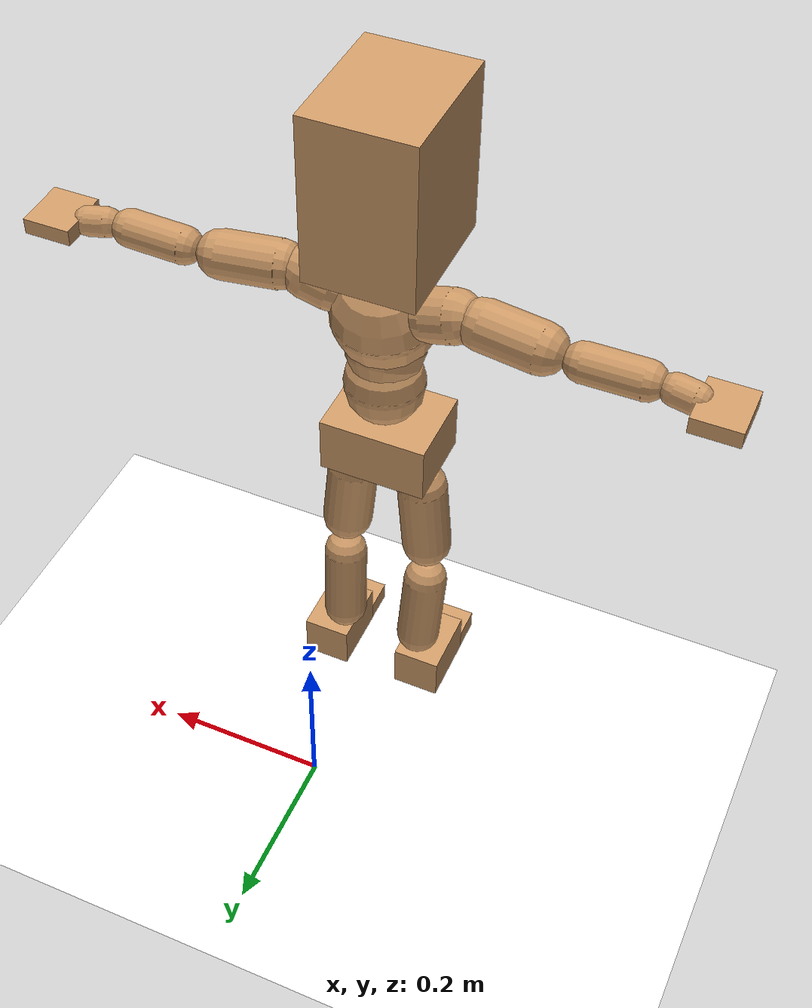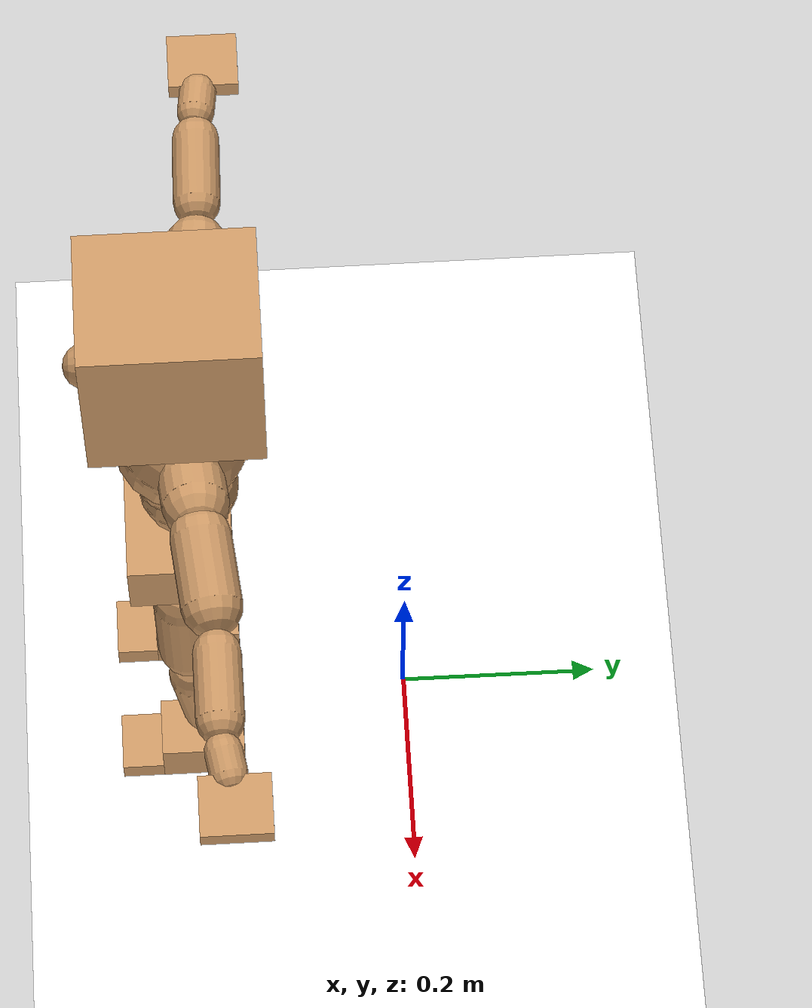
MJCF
<mujoco model="humanoid">
  <option integrator="implicitfast" />

  <visual>
    <global offwidth="1280" offheight="960" />
    <headlight active="1" ambient="0.34 0.34 0.34" diffuse="0.5 0.5 0.5" />
  </visual>

  <default>
    <joint damping="2" stiffness="2" armature="0.01" limited="true" solimplimit="0 .99 .01" />
    <geom condim="1" friction="0.7 0.005 0.0001" solimp=".99 .99 .003" solref="0.015 1" margin="0.001" rgba="0.8 0.6 .4 1" />
    <default class="smplcontact">
      <geom condim="3" friction="1. 0.005 0.0001" solref="0.015 1" solimp="0.98 0.98 0.001" priority="1" />
    </default>
    <default class="stiff_medium">
      <joint stiffness="10" />
    </default>
    <default class="stiff_medium_higher">
      <joint stiffness="50" />
    </default>
    <default class="stiff_high">
      <joint stiffness="100" />
    </default>
  </default>

  <asset>
    <texture type="skybox" builtin="gradient" rgb1="0.99 0.99 0.99" rgb2="0.608 0.828 0.892" width="100" />
    <texture builtin="flat" height="1278" mark="cross" markrgb="1 1 1" name="texgeom" random="0.01" rgb1="0.8 0.6 0.4" rgb2="0.8 0.6 0.4" type="cube" width="127" />
    <texture name="texplane" type="2d" builtin="checker" markrgb="1 1 1" rgb1="0.756 0.772 0.76" rgb2="0.6 0.6 0.6" width="100" height="100" />
    <material name="MatPlane" reflectance="0.5" texture="texplane" texrepeat="1 1" texuniform="true" />
    <material name="geom" texture="texgeom" texuniform="true" />
  </asset>

  <worldbody>
    <light name="tracking_light" pos="0 0 7" dir="0 0 -1" directional="true" cutoff="100" exponent="1" diffuse="1 1 1" specular="0.1 0.1 0.1" mode="trackcom" />
    <camera name="back" pos="0 3 2.4" xyaxes="-1 0 0 0 -1 2" mode="trackcom" />
    <camera name="side" pos="-3 0 2.4" xyaxes="0 -1 0 1 0 2" mode="trackcom" />
    <camera name="front_side" pos="-2.8 -2.8 0.8" xyaxes="0.5 -0.5 0 0.1 0.1 1" mode="trackcom" />
    <geom condim="3" name="floor" pos="0 0 0" rgba="1 1 1 1" size="100 100 .2" type="plane" material="MatPlane" />
    <body name="Pelvis" pos="-0.0018 -0.2233 0.405042" euler="90 0 0">
      <site name="Pelvis" size="0.01" />
      <freejoint name="Pelvis" />
      <geom type="box" pos="0 -0.00597861 -0.003366" size="0.0654228 0.035674 0.050796" quat="1.0000 0.0000 0.0000 0.0000" density="3165.830099" name="Pelvis" />
      <body name="L_Hip" pos="0.042534 -0.0451607 -0.0041616">
        <joint name="L_Hip_x" type="hinge" pos="0 0 0" axis="1 0 0" stiffness="0.48995234693877554" range="-160.0 22.92" class="stiff_medium" damping="0.4977047726865478" armature="0.0002247021616173823"/>
        <joint name="L_Hip_y" type="hinge" pos="0 0 0" axis="0 1 0" stiffness="0.5171365625" range="-70.0 70.0" class="stiff_medium" damping="0.3921488021081134" armature="0.0002973695811632509"/>
        <joint name="L_Hip_z" type="hinge" pos="0 0 0" axis="0 0 1" stiffness="0.5103924489795918" range="-28.65 90.0" class="stiff_medium" damping="0.33856878214165964" armature="0.00022458956920318792"/>
        <geom type="capsule" density="2040.816327" fromto="0.00283467 -0.0307344 -0.00036889 0.0112356 -0.123021 -0.00147535" size="0.0312174" name="L_Hip" />
        <body name="L_Knee" pos="0.0140702 -0.153756 -0.00184424">
          <joint name="L_Knee_x" type="hinge" pos="0 0 0" axis="1 0 0" range="-5.16 171.89" damping="0.2960587681026821" armature="0.00026061426619812696" stiffness="0.10510120408163266"/>
          <joint name="L_Knee_y" type="hinge" pos="0 0 0" axis="0 1 0" range="-4.58 6.88" damping="0.3273177664941245" armature="0.00035769287368093153" stiffness="0.0936006558854719"/>
          <joint name="L_Knee_z" type="hinge" pos="0 0 0" axis="0 0 1" range="-6.88 4.58" damping="0.3050535283425393" armature="0.000259683439414108" stiffness="0.1119844888888889"/>
          <geom type="capsule" density="1234.567901" fromto="-0.00110323 -0.0326209 -0.00355883 -0.00446359 -0.130481 -0.0143366" size="0.0274612" name="L_Knee" />
          <body name="L_Ankle" pos="-0.00556682 -0.163102 -0.0178954">
            <joint name="L_Ankle_x" type="hinge" pos="0 0 0" axis="1 0 0" range="-45.84 45.84" class="stiff_medium" damping="0.40776364333247084" armature="0.0005000444231591069" stiffness="0.9236467641843972"/>
            <joint name="L_Ankle_y" type="hinge" pos="0 0 0" axis="0 1 0" range="-74.48 22.92" class="stiff_medium" damping="0.21238666720539898" armature="0.0004968127957888357" stiffness="1.0088328550170067"/>
            <joint name="L_Ankle_z" type="hinge" pos="0 0 0" axis="0 0 1" range="-4.58 4.58" class="stiff_medium" damping="0.5341341980566087" armature="0.0006966466319262585" stiffness="1.1375898979591836"/>
            <geom type="box" pos="0.0142596 -0.0146268 0.0120177" size="0.0295596 0.0283968 0.042211" quat="1.0000 0.0000 0.0000 0.0000" density="449.071558" name="L_Ankle" class="smplcontact" />
            <body name="L_Toe" pos="0.0161568 -0.0341496 0.0592444">
              <joint name="L_Toe_x" type="hinge" pos="0 0 0" axis="1 0 0" range="-91.67 22.92" armature="0.0004847995347912504" damping="0.13412514043759988" stiffness="0.185536"/>
              <joint name="L_Toe_y" type="hinge" pos="0 0 0" axis="0 1 0" range="-4.58 4.58" armature="0.0005444255858703062" damping="0.1437140729095886" stiffness="0.1896837261904762"/>
              <joint name="L_Toe_z" type="hinge" pos="0 0 0" axis="0 0 1" range="-4.58 4.58" armature="0.000696647260818292" damping="0.1781011559156279" stiffness="0.227662"/>
              <geom type="box" pos="-0.001836 0.003366 0.0123157" size="0.0292536 0.01224 0.0246314" quat="1.0000 0.0000 0.0000 0.0000" density="423.206892" name="L_Toe" class="smplcontact" />
            </body>
          </body>
        </body>
      </body>
      <body name="R_Hip" pos="-0.0414324 -0.0447161 -0.0026316">
        <joint name="R_Hip_x" type="hinge" pos="0 0 0" axis="1 0 0" stiffness="0.48995234693877554" range="-160.0 22.92" class="stiff_medium" damping="0.4977047726865478" armature="0.0002247021616173823"/>
        <joint name="R_Hip_y" type="hinge" pos="0 0 0" axis="0 1 0" stiffness="0.5171365625" range="-70.0 70.0" class="stiff_medium" damping="0.3921488021081134" armature="0.0002973695811632509"/>
        <joint name="R_Hip_z" type="hinge" pos="0 0 0" axis="0 0 1" stiffness="0.5103924489795918" range="-90.0 28.65" class="stiff_medium" damping="0.33856878214165964" armature="0.00022458956920318792"/>
        <geom type="capsule" density="2040.816327" fromto="-0.00316223 -0.0313489 -0.000740958 -0.0125467 -0.125439 -0.0029129" size="0.0307606" name="R_Hip" />
        <body name="R_Knee" pos="-0.0157089 -0.156788 -0.00365386">
          <joint name="R_Knee_x" type="hinge" pos="0 0 0" axis="1 0 0" range="-5.16 171.89" damping="0.2960587681026821" armature="0.00026061426619812696" stiffness="0.10510120408163266"/>
          <joint name="R_Knee_y" type="hinge" pos="0 0 0" axis="0 1 0" range="-6.88 4.58" damping="0.3273177664941245" armature="0.00035769287368093153" stiffness="0.0936006558854719"/>
          <joint name="R_Knee_z" type="hinge" pos="0 0 0" axis="0 0 1" range="-4.58 6.88" damping="0.3050535283425393" armature="0.000259683439414108" stiffness="0.1119844888888889"/>
          <geom type="capsule" density="1234.567901" fromto="0.00131772 -0.0326602 -0.00348938 0.00516984 -0.130602 -0.0138573" size="0.0274612" name="R_Knee" />
          <body name="R_Ankle" pos="0.00648755 -0.163263 -0.0173467">
            <joint name="R_Ankle_x" type="hinge" pos="0 0 0" axis="1 0 0" range="-45.84 45.84" class="stiff_medium" damping="0.40776364333247084" armature="0.0005000444231591069" stiffness="0.9236467641843972"/>
            <joint name="R_Ankle_y" type="hinge" pos="0 0 0" axis="0 1 0" range="-22.92 74.48" class="stiff_medium" damping="0.21238666720539898" armature="0.0004968127957888357" stiffness="1.0088328550170067"/>
            <joint name="R_Ankle_z" type="hinge" pos="0 0 0" axis="0 0 1" range="-4.58 4.58" class="stiff_medium" damping="0.5341341980566087" armature="0.0006966466319262585" stiffness="1.1375898979591836"/>
            <geom type="box" pos="-0.0129744 -0.0106488 0.012713" size="0.0295596 0.0292536 0.0429559" quat="1.0000 0.0000 0.0000 0.0000" density="434.700981" name="R_Ankle" class="smplcontact" />
            <body name="R_Toe" pos="-0.0155448 -0.0294372 0.0612308">
              <joint name="R_Toe_x" type="hinge" pos="0 0 0" axis="1 0 0" range="-91.67 22.92" armature="0.0004847995347912504" damping="0.13412514043759988" stiffness="0.185536"/>
              <joint name="R_Toe_y" type="hinge" pos="0 0 0" axis="0 1 0" range="-4.58 4.58" armature="0.0005444255858703062" damping="0.1437140729095886" stiffness="0.1896837261904762"/>
              <joint name="R_Toe_z" type="hinge" pos="0 0 0" axis="0 0 1" range="-4.58 4.58" armature="0.000696647260818292" damping="0.1781011559156279" stiffness="0.227662"/>
              <geom type="box" pos="0.0025704 0.002754 0.0112728" size="0.0293148 0.0132192 0.0244824" quat="1.0000 0.0000 0.0000 0.0000" density="407.384095" name="R_Toe" class="smplcontact" />
            </body>
          </body>
        </body>
      </body>
      <body name="Torso" pos="-0.00153 0.0538569 -0.0163404">
        <joint name="Torso_x" type="hinge" pos="0 0 0" axis="1 0 0" range="-25.78 57.3" class="stiff_medium" damping="2.9084601436144015" armature="0.0015892240295548327" stiffness="2.3656941304347825"/>
        <joint name="Torso_y" type="hinge" pos="0 0 0" axis="0 1 0" range="-57.3 57.3" class="stiff_high" damping="2.1263994733272606" armature="0.0004643109293701226" stiffness="24.34561860465116"/>
        <joint name="Torso_z" type="hinge" pos="0 0 0" axis="0 0 1" range="-34.38 34.38" class="stiff_high" damping="3.2512143793534687" armature="0.0011853281347181397" stiffness="22.294237837837844"/>
        <geom type="capsule" density="2040.816327" fromto="0.00128214 0.0304597 0.000256427 0.00153264 0.0372232 0.000306527" size="0.0477241" name="Torso" />
        <body name="Spine" pos="0.00281433 0.0677329 0.000562866">
          <joint name="Spine_x" type="hinge" pos="0 0 0" axis="1 0 0" stiffness="2.5584518750000003" range="-25.78 57.3" class="stiff_medium" damping="3.505454864283201" armature="0.002134661359620802"/>
          <joint name="Spine_y" type="hinge" pos="0 0 0" axis="0 1 0" stiffness="3.0424686206896547" range="-57.3 57.3" class="stiff_high" damping="0.9480206252448731" armature="0.00046156140885170643"/>
          <joint name="Spine_z" type="hinge" pos="0 0 0" axis="0 0 1" stiffness="5.511264102564102" range="-34.38 34.38" class="stiff_high" damping="2.170870632419105" armature="0.0011876382257513406"/>
          <geom type="capsule" density="2040.816327" fromto="0.00038095 0.0119364 0.00568462 0.00043105 0.0145917 0.00698722" size="0.0468553" name="Spine" />
          <body name="Chest" pos="0.000812 0.026528 0.0126718">
            <joint name="Chest_x" type="hinge" pos="0 0 0" axis="1 0 0" stiffness="3.028622222222222" range="-25.78 57.3" class="stiff_medium" damping="4.092467015800738" armature="0.002457778568240344"/>
            <joint name="Chest_y" type="hinge" pos="0 0 0" axis="0 1 0" stiffness="3.0405263157894735" range="-57.3 57.3" class="stiff_high" damping="0.9456197703732916" armature="0.000459519924168467"/>
            <joint name="Chest_z" type="hinge" pos="0 0 0" axis="0 0 1" stiffness="6.460490526315789" range="-34.38 34.38" class="stiff_high" damping="2.3119444408530216" armature="0.001149097278255941"/>
            <geom type="capsule" density="2040.816327" fromto="-0.00050458 0.034177 -0.00863194 -0.00055468 0.0417421 -0.0105858" size="0.0621841" name="Chest" />
            <body name="Neck" pos="-0.00157062 0.10752 -0.0201084">
              <joint name="Neck_x" type="hinge" pos="0 0 0" axis="1 0 0" range="-28.65 57.3" class="stiff_medium_higher" damping="5.404989203095745" armature="0.005405442888714338" stiffness="27.02267777777778"/>
              <joint name="Neck_y" type="hinge" pos="0 0 0" axis="0 1 0" range="-40.11 40.11" class="stiff_medium_higher" damping="6.297114262226772" armature="0.007507919137942941" stiffness="26.40788166666666"/>
              <joint name="Neck_z" type="hinge" pos="0 0 0" axis="0 0 1" range="-40.11 40.11" class="stiff_medium_higher" damping="6.363901976368176" armature="0.005521056653527617" stiffness="36.677080952380955"/>
              <geom type="capsule" density="1000" fromto="0.000492513 0.00645408 0.00511757 0.00203197 0.0258215 0.0204129" size="0.0268184" name="Neck" />
              <body name="Head" pos="0.00258641 0.0322807 0.025473">
                <joint name="Head_x" type="hinge" pos="0 0 0" axis="1 0 0" range="-28.65 57.3" class="stiff_medium_higher" damping="1.66355057917507" armature="0.007932048424047764" stiffness="43.61106333333333"/>
                <joint name="Head_y" type="hinge" pos="0 0 0" axis="0 1 0" range="-40.11 40.11" class="stiff_medium_higher" damping="2.0692690885759495" armature="0.011292038670453653" stiffness="47.39926382978724"/>
                <joint name="Head_z" type="hinge" pos="0 0 0" axis="0 0 1" range="-40.11 40.11" class="stiff_medium_higher" damping="1.6444739375671138" armature="0.007726206284965644" stiffness="43.75197916666667"/>
                <geom type="box" pos="-0.00449148 0.0756338 -0.012405" size="0.0648056 0.0996364 0.0812744" quat="1.0000 0.0000 0.0000 0.0000" density="1018.069894" name="Head" />
                <geom type="capsule" name="nose" size="0.021388 0.010694" pos="0 0.060438 0.05347" quat="1 0 0 0" mass="0" contype="0" conaffinity="0" />
              </body>
            </body>
            <body name="L_Thorax" pos="0.0489998 0.0609536 -0.0173985">
              <joint name="L_Thorax_x" type="hinge" pos="0 0 0" axis="1 0 0" range="-10.89 4.58" class="stiff_medium_higher" damping="1.0759147759719383" armature="0.00042847793960415563" stiffness="3.3770484375"/>
              <joint name="L_Thorax_y" type="hinge" pos="0 0 0" axis="0 1 0" range="-28.65 17.19" class="stiff_medium_higher" damping="0.950541276903369" armature="0.00031755704164836265" stiffness="3.5565607142857143"/>
              <joint name="L_Thorax_z" type="hinge" pos="0 0 0" axis="0 0 1" range="-31.51 40.11" class="stiff_medium_higher" damping="0.9474628677750806" armature="0.00031771354867687933" stiffness="3.531820918367347"/>
              <geom type="capsule" density="1000" fromto="0.00886852 0.00297242 -0.000880984 0.0354751 0.01189 -0.00346367" size="0.0314476" name="L_Thorax" />
              <body name="L_Shoulder" pos="0.0443436 0.0148624 -0.00434466">
                <joint name="L_Shoulder_x" type="hinge" pos="0 0 0" axis="1 0 0" range="-97.4 97.4" class="stiff_medium" damping="0.31160092213034485" armature="0.00040070053288131474" stiffness="0.6730929591836734"/>
                <joint name="L_Shoulder_y" type="hinge" pos="0 0 0" axis="0 1 0" range="-108.86 80.21" class="stiff_medium" damping="0.27134865537234404" armature="0.0003077174821460575" stiffness="0.6646617346938776"/>
                <joint name="L_Shoulder_z" type="hinge" pos="0 0 0" axis="0 0 1" range="-97.4 85.94" class="stiff_medium" damping="0.2713565853419703" armature="0.00030752509070149564" stiffness="0.6651164285714285"/>
                <geom type="capsule" density="1000" fromto="0.0231107 -0.00116502 -0.00244948 0.0924884 -0.0045493 -0.00979693" size="0.0285177" name="L_Shoulder" />
                <body name="L_Elbow" pos="0.115599 -0.00571432 -0.0122464">
                  <joint name="L_Elbow_x" type="hinge" pos="0 0 0" axis="1 0 0" range="-17.19 4.58" damping="0.28313627322323576" armature="0.00046438098813922205" stiffness="0.13810410204081633"/>
                  <joint name="L_Elbow_y" type="hinge" pos="0 0 0" axis="0 1 0" range="-180.0 17.19" damping="0.2369346839007025" armature="0.00032516475611910956" stiffness="0.1381159387755102"/>
                  <joint name="L_Elbow_z" type="hinge" pos="0 0 0" axis="0 0 1" range="-100.84 4.58" damping="0.23690814451099315" armature="0.00032427806796637466" stiffness="0.13846257142857143"/>
                  <geom type="capsule" density="1000" fromto="0.0221759 0.000801796 -8.55499e-05 0.0887928 0.00320642 -0.00039726" size="0.0223398" name="L_Elbow" />
                  <body name="L_Wrist" pos="0.110969 0.00400821 -0.000537969">
                    <joint name="L_Wrist_x" type="hinge" pos="0 0 0" axis="1 0 0" range="-180.0 22.92" armature="0.0005468522613627445" damping="0.13289487155970034" stiffness="0.16147914285714288"/>
                    <joint name="L_Wrist_y" type="hinge" pos="0 0 0" axis="0 1 0" range="-17.19 17.19" armature="0.0003976883443506446" damping="0.1117601636600009" stiffness="0.15703671428571428"/>
                    <joint name="L_Wrist_z" type="hinge" pos="0 0 0" axis="0 0 1" range="-22.92 22.92" armature="0.0003857789424559731" damping="0.1105031987837259" stiffness="0.15826365306122447"/>
                    <geom type="capsule" density="1000" fromto="0.00748137 -0.000708969 -0.00133596 0.0299245 -0.00289094 -0.00534366" size="0.0175409" name="L_Wrist" class="smplcontact" />
                    <body name="L_Hand" pos="0.0374067 -0.00365515 -0.00662461">
                      <joint name="L_Hand_x" type="hinge" pos="0 0 0" axis="1 0 0" range="-17.19 17.19" armature="0.0006931388541826061" damping="0.163825834799273" stiffness="0.19360409523809524"/>
                      <joint name="L_Hand_y" type="hinge" pos="0 0 0" axis="0 1 0" range="-51.57 51.57" armature="0.0005080133040382627" damping="0.13712042114854622" stiffness="0.185054306122449"/>
                      <joint name="L_Hand_z" type="hinge" pos="0 0 0" axis="0 0 1" range="-91.67 91.67" armature="0.00045788384153414355" damping="0.1294660010052445" stiffness="0.18303163265306124"/>
                      <geom type="box" pos="0.0243591 0.000612 -0.0035496" size="0.0289048 0.0096696 0.0329256" quat="1.0000 0.0000 0.0000 0.0000" density="400.552564" name="L_Hand" class="smplcontact" />
                    </body>
                  </body>
                </body>
              </body>
            </body>
            <body name="R_Thorax" pos="-0.0506691 0.0592294 -0.0202107">
              <joint name="R_Thorax_x" type="hinge" pos="0 0 0" axis="1 0 0" range="-10.89 4.58" class="stiff_medium_higher" damping="1.0759147759719383" armature="0.00042847793960415563" stiffness="3.3770484375"/>
              <joint name="R_Thorax_y" type="hinge" pos="0 0 0" axis="0 1 0" range="-17.19 28.65" class="stiff_medium_higher" damping="0.950541276903369" armature="0.00031755704164836265" stiffness="3.5565607142857143"/>
              <joint name="R_Thorax_z" type="hinge" pos="0 0 0" axis="0 0 1" range="-40.11 31.51" class="stiff_medium_higher" damping="0.9474628677750806" armature="0.00031771354867687933" stiffness="3.531820918367347"/>
              <geom type="capsule" density="1000" fromto="-0.00935649 0.00316756 -0.000873295 -0.037425 0.0126699 -0.00355344" size="0.030844" name="R_Thorax" />
              <body name="R_Shoulder" pos="-0.046778 0.0158966 -0.00442641">
                <joint name="R_Shoulder_x" type="hinge" pos="0 0 0" axis="1 0 0" range="-97.4 97.4" class="stiff_medium" damping="0.31160092213034485" armature="0.00040070053288131474" stiffness="0.6730929591836734"/>
                <joint name="R_Shoulder_y" type="hinge" pos="0 0 0" axis="0 1 0" range="-80.21 108.86" class="stiff_medium" damping="0.27134865537234404" armature="0.0003077174821460575" stiffness="0.6646617346938776"/>
                <joint name="R_Shoulder_z" type="hinge" pos="0 0 0" axis="0 0 1" range="-85.94 97.4" class="stiff_medium" damping="0.2713565853419703" armature="0.00030752509070149564" stiffness="0.6651164285714285"/>
                <geom type="capsule" density="1000" fromto="-0.0225762 -0.0012062 -0.00191888 -0.0903954 -0.0047686 -0.00761872" size="0.02929" name="R_Shoulder" />
                <body name="R_Elbow" pos="-0.112972 -0.00591966 -0.00953765">
                  <joint name="R_Elbow_x" type="hinge" pos="0 0 0" axis="1 0 0" range="-17.19 4.58" damping="0.28313627322323576" armature="0.00046438098813922205" stiffness="0.13810410204081633"/>
                  <joint name="R_Elbow_y" type="hinge" pos="0 0 0" axis="0 1 0" range="-17.19 180.0" damping="0.2369346839007025" armature="0.00032516475611910956" stiffness="0.1381159387755102"/>
                  <joint name="R_Elbow_z" type="hinge" pos="0 0 0" axis="0 0 1" range="-4.58 100.84" damping="0.23690814451099315" armature="0.00032427806796637466" stiffness="0.13846257142857143"/>
                  <geom type="capsule" density="1000" fromto="-0.0227546 0.000719348 -0.000489673 -0.0909301 0.00276773 -0.00195916" size="0.0225053" name="R_Elbow" />
                  <body name="R_Wrist" pos="-0.113684 0.00348707 -0.00250399">
                    <joint name="R_Wrist_x" type="hinge" pos="0 0 0" axis="1 0 0" range="-180.0 22.92" armature="0.0005468522613627445" damping="0.13289487155970034" stiffness="0.16147914285714288"/>
                    <joint name="R_Wrist_y" type="hinge" pos="0 0 0" axis="0 1 0" range="-17.19 17.19" armature="0.0003976883443506446" damping="0.1117601636600009" stiffness="0.15703671428571428"/>
                    <joint name="R_Wrist_z" type="hinge" pos="0 0 0" axis="0 0 1" range="-22.92 22.92" armature="0.0003857789424559731" damping="0.1105031987837259" stiffness="0.15826365306122447"/>
                    <geom type="capsule" density="1000" fromto="-0.00752533 -0.000531057 -0.000939076 -0.0301466 -0.00217867 -0.00369994" size="0.0179822" name="R_Wrist" class="smplcontact" />
                    <body name="R_Hand" pos="-0.0376732 -0.00270982 -0.00458401">
                      <joint name="R_Hand_x" type="hinge" pos="0 0 0" axis="1 0 0" range="-17.19 17.19" armature="0.0006931388541826061" damping="0.163825834799273" stiffness="0.19360409523809524"/>
                      <joint name="R_Hand_y" type="hinge" pos="0 0 0" axis="0 1 0" range="-51.57 51.57" armature="0.0005080133040382627" damping="0.13712042114854622" stiffness="0.185054306122449"/>
                      <joint name="R_Hand_z" type="hinge" pos="0 0 0" axis="0 0 1" range="-91.67 91.67" armature="0.00045788384153414355" damping="0.1294660010052445" stiffness="0.18303163265306124"/>
                      <geom type="box" pos="-0.0228274 -0.0005508 -0.0048348" size="0.0281143 0.0100368 0.0334152" quat="1.0000 0.0000 0.0000 0.0000" density="403.679611" name="R_Hand" class="smplcontact" />
                    </body>
                  </body>
                </body>
              </body>
            </body>
          </body>
        </body>
      </body>
    </body>
  </worldbody>
  <actuator>
    <general name="L_Hip_x" joint="L_Hip_x" biastype="affine" gainprm="14.077803925055195" biasprm="-10.54988717497576 -8.819142244897959 -0.06636063635820637" ctrllimited="true" ctrlrange="-1 1" forcerange="-17.638284489795918 17.638284489795918" />
    <general name="L_Hip_y" joint="L_Hip_y" biastype="affine" gainprm="11.37242697956875" biasprm="0.0 -9.308458125 -0.07842976042162268" ctrllimited="true" ctrlrange="-1 1" forcerange="-18.61691625 18.61691625" />
    <general name="L_Hip_z" joint="L_Hip_z" biastype="affine" gainprm="9.512438460121" biasprm="4.918568053336901 -9.187064081632654 -0.06771375642833193" ctrllimited="true" ctrlrange="-1 1" forcerange="-18.374128163265308 18.374128163265308" />
    <general name="L_Knee_x" joint="L_Knee_x" biastype="affine" gainprm="14.61482111484655" biasprm="13.762943374630698 -9.45910836734694 -0.07401469202567053" ctrllimited="true" ctrlrange="-1 1" forcerange="-18.91821673469388 18.91821673469388" />
    <general name="L_Knee_y" joint="L_Knee_y" biastype="affine" gainprm="0.8424679557613213" biasprm="0.16908170141806622 -8.42405902969247 -0.08182944162353112" ctrllimited="true" ctrlrange="-1 1" forcerange="-16.84811805938494 16.84811805938494" />
    <general name="L_Knee_z" joint="L_Knee_z" biastype="affine" gainprm="1.0079346404007625" biasprm="-0.2022905473753712 -10.078604 -0.07626338208563482" ctrllimited="true" ctrlrange="-1 1" forcerange="-20.157208 20.157208" />
    <general name="L_Ankle_x" joint="L_Ankle_x" biastype="affine" gainprm="6.65074656929849" biasprm="0.0 -8.312820877659576 -0.13592121444415695" ctrllimited="true" ctrlrange="-1 1" forcerange="-16.62564175531915 16.62564175531915" />
    <general name="L_Ankle_y" joint="L_Ankle_y" biastype="affine" gainprm="7.7173474924622205" biasprm="-4.085281691081644 -9.07949569515306 -0.14159111147026598" ctrllimited="true" ctrlrange="-1 1" forcerange="-18.15899139030612 18.15899139030612" />
    <general name="L_Ankle_z" joint="L_Ankle_z" biastype="affine" gainprm="0.8184102911658762" biasprm="0.0 -10.238309081632654 -0.17804473268553622" ctrllimited="true" ctrlrange="-1 1" forcerange="-20.476618163265307 20.476618163265307" />
    <general name="L_Toe_x" joint="L_Toe_x" biastype="affine" gainprm="6.679205127711378" biasprm="-4.007289925212996 -6.679296 -0.053650056175039956" ctrllimited="true" ctrlrange="-1 1" forcerange="-13.358592 13.358592" />
    <general name="L_Toe_y" joint="L_Toe_y" biastype="affine" gainprm="0.5458526446462726" biasprm="0.0 -6.828614142857143 -0.05748562916383544" ctrllimited="true" ctrlrange="-1 1" forcerange="-13.657228285714286 13.657228285714286" />
    <general name="L_Toe_z" joint="L_Toe_z" biastype="affine" gainprm="0.6551426802986285" biasprm="0.0 -8.195832 -0.07124046236625116" ctrllimited="true" ctrlrange="-1 1" forcerange="-16.391664 16.391664" />
    <general name="R_Hip_x" joint="R_Hip_x" biastype="affine" gainprm="14.077803925055195" biasprm="-10.54988717497576 -8.819142244897959 -0.06636063635820637" ctrllimited="true" ctrlrange="-1 1" forcerange="-17.638284489795918 17.638284489795918" />
    <general name="R_Hip_y" joint="R_Hip_y" biastype="affine" gainprm="11.37242697956875" biasprm="0.0 -9.308458125 -0.07842976042162268" ctrllimited="true" ctrlrange="-1 1" forcerange="-18.61691625 18.61691625" />
    <general name="R_Hip_z" joint="R_Hip_z" biastype="affine" gainprm="9.512438460121" biasprm="-4.918568053336901 -9.187064081632654 -0.06771375642833193" ctrllimited="true" ctrlrange="-1 1" forcerange="-18.374128163265308 18.374128163265308" />
    <general name="R_Knee_x" joint="R_Knee_x" biastype="affine" gainprm="14.61482111484655" biasprm="13.762943374630698 -9.45910836734694 -0.07401469202567053" ctrllimited="true" ctrlrange="-1 1" forcerange="-18.91821673469388 18.91821673469388" />
    <general name="R_Knee_y" joint="R_Knee_y" biastype="affine" gainprm="0.8424679557613213" biasprm="-0.16908170141806622 -8.42405902969247 -0.08182944162353112" ctrllimited="true" ctrlrange="-1 1" forcerange="-16.84811805938494 16.84811805938494" />
    <general name="R_Knee_z" joint="R_Knee_z" biastype="affine" gainprm="1.0079346404007625" biasprm="0.2022905473753712 -10.078604 -0.07626338208563482" ctrllimited="true" ctrlrange="-1 1" forcerange="-20.157208 20.157208" />
    <general name="R_Ankle_x" joint="R_Ankle_x" biastype="affine" gainprm="6.65074656929849" biasprm="0.0 -8.312820877659576 -0.13592121444415695" ctrllimited="true" ctrlrange="-1 1" forcerange="-16.62564175531915 16.62564175531915" />
    <general name="R_Ankle_y" joint="R_Ankle_y" biastype="affine" gainprm="7.7173474924622205" biasprm="4.085281691081644 -9.07949569515306 -0.14159111147026598" ctrllimited="true" ctrlrange="-1 1" forcerange="-18.15899139030612 18.15899139030612" />
    <general name="R_Ankle_z" joint="R_Ankle_z" biastype="affine" gainprm="0.8184102911658762" biasprm="0.0 -10.238309081632654 -0.17804473268553622" ctrllimited="true" ctrlrange="-1 1" forcerange="-20.476618163265307 20.476618163265307" />
    <general name="R_Toe_x" joint="R_Toe_x" biastype="affine" gainprm="6.679205127711378" biasprm="-4.007289925212996 -6.679296 -0.053650056175039956" ctrllimited="true" ctrlrange="-1 1" forcerange="-13.358592 13.358592" />
    <general name="R_Toe_y" joint="R_Toe_y" biastype="affine" gainprm="0.5458526446462726" biasprm="0.0 -6.828614142857143 -0.05748562916383544" ctrllimited="true" ctrlrange="-1 1" forcerange="-13.657228285714286 13.657228285714286" />
    <general name="R_Toe_z" joint="R_Toe_z" biastype="affine" gainprm="0.6551426802986285" biasprm="0.0 -8.195832 -0.07124046236625116" ctrllimited="true" ctrlrange="-1 1" forcerange="-16.391664 16.391664" />
    <general name="Torso_x" joint="Torso_x" biastype="affine" gainprm="41.16363265011073" biasprm="15.617208728111336 -56.77665913043478 -0.7755893716305071" ctrllimited="true" ctrlrange="-1 1" forcerange="-85.16498869565217 85.16498869565217" />
    <general name="Torso_y" joint="Torso_y" biastype="affine" gainprm="58.4337886483799" biasprm="0.0 -58.42948465116279 -0.42527989466545213" ctrllimited="true" ctrlrange="-1 1" forcerange="-87.64422697674418 87.64422697674418" />
    <general name="Torso_z" joint="Torso_z" biastype="affine" gainprm="32.10606728992411" biasprm="0.0 -53.50617081081082 -0.6502428758706937" ctrllimited="true" ctrlrange="-1 1" forcerange="-80.25925621621624 80.25925621621624" />
    <general name="Spine_x" joint="Spine_x" biastype="affine" gainprm="44.51766260929578" biasprm="16.889705409785783 -61.402845000000006 -0.9347879638088535" ctrllimited="true" ctrlrange="-1 1" forcerange="-92.1042675 92.1042675" />
    <general name="Spine_y" joint="Spine_y" biastype="affine" gainprm="73.02462559597572" biasprm="0.0 -73.0192468965517 -0.47401031262243654" ctrllimited="true" ctrlrange="-1 1" forcerange="-109.52887034482757 109.52887034482757" />
    <general name="Spine_z" joint="Spine_z" biastype="affine" gainprm="39.68402450366675" biasprm="0.0 -66.13516923076922 -0.7236235441397016" ctrllimited="true" ctrlrange="-1 1" forcerange="-99.20275384615383 99.20275384615383" />
    <general name="Chest_x" joint="Chest_x" biastype="affine" gainprm="52.69873691093154" biasprm="19.993550643145905 -72.68693333333333 -1.0913245375468634" ctrllimited="true" ctrlrange="-1 1" forcerange="-109.03039999999999 109.03039999999999" />
    <general name="Chest_y" joint="Chest_y" biastype="affine" gainprm="72.97800684462216" biasprm="0.0 -72.97263157894736 -0.4728098851866458" ctrllimited="true" ctrlrange="-1 1" forcerange="-109.45894736842105 109.45894736842105" />
    <general name="Chest_z" joint="Chest_z" biastype="affine" gainprm="46.51895818832985" biasprm="0.0 -77.52588631578948 -0.7706481469510073" ctrllimited="true" ctrlrange="-1 1" forcerange="-116.28882947368422 116.28882947368422" />
    <general name="Neck_x" joint="Neck_x" biastype="affine" gainprm="14.593320885163724" biasprm="4.864440295054575 -19.456328000000003 -0.4323991362476596" ctrllimited="true" ctrlrange="-1 1" forcerange="-38.912656000000005 38.912656000000005" />
    <general name="Neck_y" joint="Neck_y" biastype="affine" gainprm="13.310552761636952" biasprm="0.0 -19.013674799999997 -0.5037691409781418" ctrllimited="true" ctrlrange="-1 1" forcerange="-38.027349599999994 38.027349599999994" />
    <general name="Neck_z" joint="Neck_z" biastype="affine" gainprm="18.486610449171952" biasprm="0.0 -26.407498285714286 -0.5091121581094541" ctrllimited="true" ctrlrange="-1 1" forcerange="-52.81499657142857 52.81499657142857" />
    <general name="Head_x" joint="Head_x" biastype="affine" gainprm="15.70113928259921" biasprm="5.233713094199737 -20.933310399999996 -0.6654202316700281" ctrllimited="true" ctrlrange="-1 1" forcerange="-41.86662079999999 41.86662079999999" />
    <general name="Head_y" joint="Head_y" biastype="affine" gainprm="15.927325789393636" biasprm="0.0 -22.751646638297874 -0.8277076354303798" ctrllimited="true" ctrlrange="-1 1" forcerange="-45.50329327659575 45.50329327659575" />
    <general name="Head_z" joint="Head_z" biastype="affine" gainprm="14.701747871458265" biasprm="0.0 -21.000950000000003 -0.6577895750268455" ctrllimited="true" ctrlrange="-1 1" forcerange="-42.001900000000006 42.001900000000006" />
    <general name="L_Thorax_x" joint="L_Thorax_x" biastype="affine" gainprm="1.0941735626344984" biasprm="-0.44629833097761396 -8.10491625 -0.08607318207775508" ctrllimited="true" ctrlrange="-1 1" forcerange="-16.2098325 16.2098325" />
    <general name="L_Thorax_y" joint="L_Thorax_y" biastype="affine" gainprm="3.414549787681278" biasprm="-0.8536374469203195 -8.535745714285714 -0.07604330215226952" ctrllimited="true" ctrlrange="-1 1" forcerange="-17.071491428571427 17.071491428571427" />
    <general name="L_Thorax_z" joint="L_Thorax_z" biastype="affine" gainprm="5.297751764401013" biasprm="0.6361444453204231 -8.476370204081633 -0.07579702942200645" ctrllimited="true" ctrlrange="-1 1" forcerange="-16.952740408163265 16.952740408163265" />
    <general name="L_Shoulder_x" joint="L_Shoulder_x" biastype="affine" gainprm="5.492279238572874" biasprm="0.0 -3.2308462040816326 -0.08309357923475863" ctrllimited="true" ctrlrange="-1 1" forcerange="-6.461692408163265 6.461692408163265" />
    <general name="L_Shoulder_y" joint="L_Shoulder_y" biastype="affine" gainprm="5.263951875542713" biasprm="-0.7976528335235559 -3.190376326530612 -0.07235964143262508" ctrllimited="true" ctrlrange="-1 1" forcerange="-6.380752653061224 6.380752653061224" />
    <general name="L_Shoulder_z" joint="L_Shoulder_z" biastype="affine" gainprm="5.107913234123332" biasprm="-0.319279402547472 -3.192558857142857 -0.0723617560911921" ctrllimited="true" ctrlrange="-1 1" forcerange="-6.385117714285714 6.385117714285714" />
    <general name="L_Elbow_x" joint="L_Elbow_x" biastype="affine" gainprm="0.9445280941392492" biasprm="-0.5471060756589773 -4.9717476734693875 -0.04530180371571772" ctrllimited="true" ctrlrange="-1 1" forcerange="-9.943495346938775 9.943495346938775" />
    <general name="L_Elbow_y" joint="L_Elbow_y" biastype="affine" gainprm="8.556153342789184" biasprm="-7.064391326839633 -4.972173795918367 -0.0379095494241124" ctrllimited="true" ctrlrange="-1 1" forcerange="-9.944347591836735 9.944347591836735" />
    <general name="L_Elbow_z" joint="L_Elbow_z" biastype="affine" gainprm="4.585696176452376" biasprm="-4.1872425910197855 -4.984652571428572 -0.03790530312175891" ctrllimited="true" ctrlrange="-1 1" forcerange="-9.969305142857143 9.969305142857143" />
    <general name="L_Wrist_x" joint="L_Wrist_x" biastype="affine" gainprm="1.7156943118867773" biasprm="-1.328115821561083 -0.9688748571428573 -0.05315794862388014" ctrllimited="true" ctrlrange="-1 1" forcerange="-1.9377497142857145 1.9377497142857145" />
    <general name="L_Wrist_y" joint="L_Wrist_y" biastype="affine" gainprm="0.28268690729184287" biasprm="0.0 -0.9422202857142856 -0.04470406546400036" ctrllimited="true" ctrlrange="-1 1" forcerange="-1.8844405714285712 1.8844405714285712" />
    <general name="L_Wrist_z" joint="L_Wrist_z" biastype="affine" gainprm="0.379860746357594" biasprm="0.0 -0.9495819183673468 -0.044201279513490364" ctrllimited="true" ctrlrange="-1 1" forcerange="-1.8991638367346937 1.8991638367346937" />
    <general name="L_Hand_x" joint="L_Hand_x" biastype="affine" gainprm="0.348513041493707" biasprm="0.0 -1.1616245714285713 -0.06553033391970921" ctrllimited="true" ctrlrange="-1 1" forcerange="-2.3232491428571427 2.3232491428571427" />
    <general name="L_Hand_y" joint="L_Hand_y" biastype="affine" gainprm="0.9993668623940115" biasprm="0.0 -1.110325836734694 -0.05484816845941849" ctrllimited="true" ctrlrange="-1 1" forcerange="-2.220651673469388 2.220651673469388" />
    <general name="L_Hand_z" joint="L_Hand_z" biastype="affine" gainprm="1.7570414338956775" biasprm="0.0 -1.0981897959183675 -0.0517864004020978" ctrllimited="true" ctrlrange="-1 1" forcerange="-2.196379591836735 2.196379591836735" />
    <general name="R_Thorax_x" joint="R_Thorax_x" biastype="affine" gainprm="1.0941735626344984" biasprm="-0.44629833097761396 -8.10491625 -0.08607318207775508" ctrllimited="true" ctrlrange="-1 1" forcerange="-16.2098325 16.2098325" />
    <general name="R_Thorax_y" joint="R_Thorax_y" biastype="affine" gainprm="3.414549787681278" biasprm="0.853637446920319 -8.535745714285714 -0.07604330215226952" ctrllimited="true" ctrlrange="-1 1" forcerange="-17.071491428571427 17.071491428571427" />
    <general name="R_Thorax_z" joint="R_Thorax_z" biastype="affine" gainprm="5.297751764401013" biasprm="-0.6361444453204231 -8.476370204081633 -0.07579702942200645" ctrllimited="true" ctrlrange="-1 1" forcerange="-16.952740408163265 16.952740408163265" />
    <general name="R_Shoulder_x" joint="R_Shoulder_x" biastype="affine" gainprm="5.492279238572874" biasprm="0.0 -3.2308462040816326 -0.08309357923475863" ctrllimited="true" ctrlrange="-1 1" forcerange="-6.461692408163265 6.461692408163265" />
    <general name="R_Shoulder_y" joint="R_Shoulder_y" biastype="affine" gainprm="5.263951875542713" biasprm="0.7976528335235559 -3.190376326530612 -0.07235964143262508" ctrllimited="true" ctrlrange="-1 1" forcerange="-6.380752653061224 6.380752653061224" />
    <general name="R_Shoulder_z" joint="R_Shoulder_z" biastype="affine" gainprm="5.107913234123332" biasprm="0.3192794025474713 -3.192558857142857 -0.0723617560911921" ctrllimited="true" ctrlrange="-1 1" forcerange="-6.385117714285714 6.385117714285714" />
    <general name="R_Elbow_x" joint="R_Elbow_x" biastype="affine" gainprm="0.9445280941392492" biasprm="-0.5471060756589773 -4.9717476734693875 -0.04530180371571772" ctrllimited="true" ctrlrange="-1 1" forcerange="-9.943495346938775 9.943495346938775" />
    <general name="R_Elbow_y" joint="R_Elbow_y" biastype="affine" gainprm="8.556153342789184" biasprm="7.064391326839633 -4.972173795918367 -0.0379095494241124" ctrllimited="true" ctrlrange="-1 1" forcerange="-9.944347591836735 9.944347591836735" />
    <general name="R_Elbow_z" joint="R_Elbow_z" biastype="affine" gainprm="4.585696176452376" biasprm="4.187242591019785 -4.984652571428572 -0.03790530312175891" ctrllimited="true" ctrlrange="-1 1" forcerange="-9.969305142857143 9.969305142857143" />
    <general name="R_Wrist_x" joint="R_Wrist_x" biastype="affine" gainprm="1.7156943118867773" biasprm="-1.328115821561083 -0.9688748571428573 -0.05315794862388014" ctrllimited="true" ctrlrange="-1 1" forcerange="-1.9377497142857145 1.9377497142857145" />
    <general name="R_Wrist_y" joint="R_Wrist_y" biastype="affine" gainprm="0.28268690729184287" biasprm="0.0 -0.9422202857142856 -0.04470406546400036" ctrllimited="true" ctrlrange="-1 1" forcerange="-1.8844405714285712 1.8844405714285712" />
    <general name="R_Wrist_z" joint="R_Wrist_z" biastype="affine" gainprm="0.379860746357594" biasprm="0.0 -0.9495819183673468 -0.044201279513490364" ctrllimited="true" ctrlrange="-1 1" forcerange="-1.8991638367346937 1.8991638367346937" />
    <general name="R_Hand_x" joint="R_Hand_x" biastype="affine" gainprm="0.348513041493707" biasprm="0.0 -1.1616245714285713 -0.06553033391970921" ctrllimited="true" ctrlrange="-1 1" forcerange="-2.3232491428571427 2.3232491428571427" />
    <general name="R_Hand_y" joint="R_Hand_y" biastype="affine" gainprm="0.9993668623940115" biasprm="0.0 -1.110325836734694 -0.05484816845941849" ctrllimited="true" ctrlrange="-1 1" forcerange="-2.220651673469388 2.220651673469388" />
    <general name="R_Hand_z" joint="R_Hand_z" biastype="affine" gainprm="1.7570414338956775" biasprm="0.0 -1.0981897959183675 -0.0517864004020978" ctrllimited="true" ctrlrange="-1 1" forcerange="-2.196379591836735 2.196379591836735" />
  </actuator>
  <contact>
    <exclude body1="Torso" body2="Chest" />
    <exclude body1="Head" body2="Chest" />
    <exclude body1="R_Knee" body2="R_Toe" />
    <exclude body1="R_Knee" body2="L_Ankle" />
    <exclude body1="R_Knee" body2="L_Toe" />
    <exclude body1="L_Knee" body2="L_Toe" />
    <exclude body1="L_Knee" body2="R_Ankle" />
    <exclude body1="L_Knee" body2="R_Toe" />
    <exclude body1="L_Shoulder" body2="Chest" />
    <exclude body1="R_Shoulder" body2="Chest" />
  </contact>
  <sensor>
    <framelinvel name="sensor_Pelvis_framelinvel" objtype="xbody" objname="Pelvis" />
    <framelinvel name="sensor_L_Hip_framelinvel" objtype="xbody" objname="L_Hip" />
    <framelinvel name="sensor_L_Knee_framelinvel" objtype="xbody" objname="L_Knee" />
    <framelinvel name="sensor_L_Ankle_framelinvel" objtype="xbody" objname="L_Ankle" />
    <framelinvel name="sensor_L_Toe_framelinvel" objtype="xbody" objname="L_Toe" />
    <framelinvel name="sensor_R_Hip_framelinvel" objtype="xbody" objname="R_Hip" />
    <framelinvel name="sensor_R_Knee_framelinvel" objtype="xbody" objname="R_Knee" />
    <framelinvel name="sensor_R_Ankle_framelinvel" objtype="xbody" objname="R_Ankle" />
    <framelinvel name="sensor_R_Toe_framelinvel" objtype="xbody" objname="R_Toe" />
    <framelinvel name="sensor_Torso_framelinvel" objtype="xbody" objname="Torso" />
    <framelinvel name="sensor_Spine_framelinvel" objtype="xbody" objname="Spine" />
    <framelinvel name="sensor_Chest_framelinvel" objtype="xbody" objname="Chest" />
    <framelinvel name="sensor_Neck_framelinvel" objtype="xbody" objname="Neck" />
    <framelinvel name="sensor_Head_framelinvel" objtype="xbody" objname="Head" />
    <framelinvel name="sensor_L_Thorax_framelinvel" objtype="xbody" objname="L_Thorax" />
    <framelinvel name="sensor_L_Shoulder_framelinvel" objtype="xbody" objname="L_Shoulder" />
    <framelinvel name="sensor_L_Elbow_framelinvel" objtype="xbody" objname="L_Elbow" />
    <framelinvel name="sensor_L_Wrist_framelinvel" objtype="xbody" objname="L_Wrist" />
    <framelinvel name="sensor_L_Hand_framelinvel" objtype="xbody" objname="L_Hand" />
    <framelinvel name="sensor_R_Thorax_framelinvel" objtype="xbody" objname="R_Thorax" />
    <framelinvel name="sensor_R_Shoulder_framelinvel" objtype="xbody" objname="R_Shoulder" />
    <framelinvel name="sensor_R_Elbow_framelinvel" objtype="xbody" objname="R_Elbow" />
    <framelinvel name="sensor_R_Wrist_framelinvel" objtype="xbody" objname="R_Wrist" />
    <framelinvel name="sensor_R_Hand_framelinvel" objtype="xbody" objname="R_Hand" />
    <frameangvel name="sensor_Pelvis_frameangvel" objtype="xbody" objname="Pelvis" />
    <frameangvel name="sensor_L_Hip_frameangvel" objtype="xbody" objname="L_Hip" />
    <frameangvel name="sensor_L_Knee_frameangvel" objtype="xbody" objname="L_Knee" />
    <frameangvel name="sensor_L_Ankle_frameangvel" objtype="xbody" objname="L_Ankle" />
    <frameangvel name="sensor_L_Toe_frameangvel" objtype="xbody" objname="L_Toe" />
    <frameangvel name="sensor_R_Hip_frameangvel" objtype="xbody" objname="R_Hip" />
    <frameangvel name="sensor_R_Knee_frameangvel" objtype="xbody" objname="R_Knee" />
    <frameangvel name="sensor_R_Ankle_frameangvel" objtype="xbody" objname="R_Ankle" />
    <frameangvel name="sensor_R_Toe_frameangvel" objtype="xbody" objname="R_Toe" />
    <frameangvel name="sensor_Torso_frameangvel" objtype="xbody" objname="Torso" />
    <frameangvel name="sensor_Spine_frameangvel" objtype="xbody" objname="Spine" />
    <frameangvel name="sensor_Chest_frameangvel" objtype="xbody" objname="Chest" />
    <frameangvel name="sensor_Neck_frameangvel" objtype="xbody" objname="Neck" />
    <frameangvel name="sensor_Head_frameangvel" objtype="xbody" objname="Head" />
    <frameangvel name="sensor_L_Thorax_frameangvel" objtype="xbody" objname="L_Thorax" />
    <frameangvel name="sensor_L_Shoulder_frameangvel" objtype="xbody" objname="L_Shoulder" />
    <frameangvel name="sensor_L_Elbow_frameangvel" objtype="xbody" objname="L_Elbow" />
    <frameangvel name="sensor_L_Wrist_frameangvel" objtype="xbody" objname="L_Wrist" />
    <frameangvel name="sensor_L_Hand_frameangvel" objtype="xbody" objname="L_Hand" />
    <frameangvel name="sensor_R_Thorax_frameangvel" objtype="xbody" objname="R_Thorax" />
    <frameangvel name="sensor_R_Shoulder_frameangvel" objtype="xbody" objname="R_Shoulder" />
    <frameangvel name="sensor_R_Elbow_frameangvel" objtype="xbody" objname="R_Elbow" />
    <frameangvel name="sensor_R_Wrist_frameangvel" objtype="xbody" objname="R_Wrist" />
    <frameangvel name="sensor_R_Hand_frameangvel" objtype="xbody" objname="R_Hand" />
    <subtreelinvel name="Chest_subtreelinvel" body="Chest" />
    <gyro name="Pelvis_gyro" site="Pelvis" />
  </sensor>
</mujoco>
